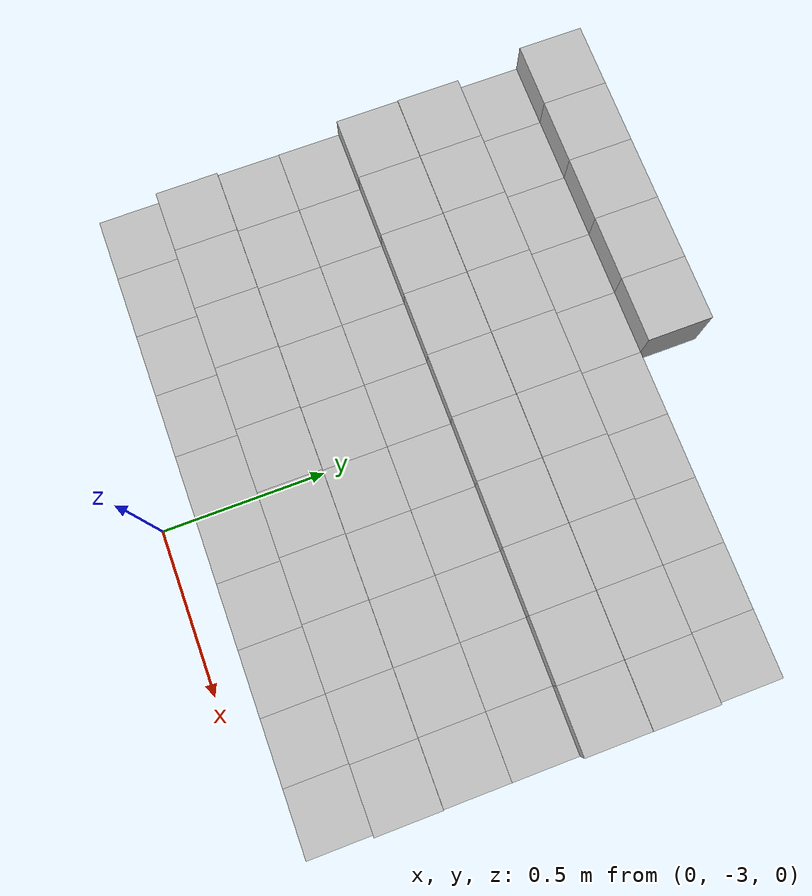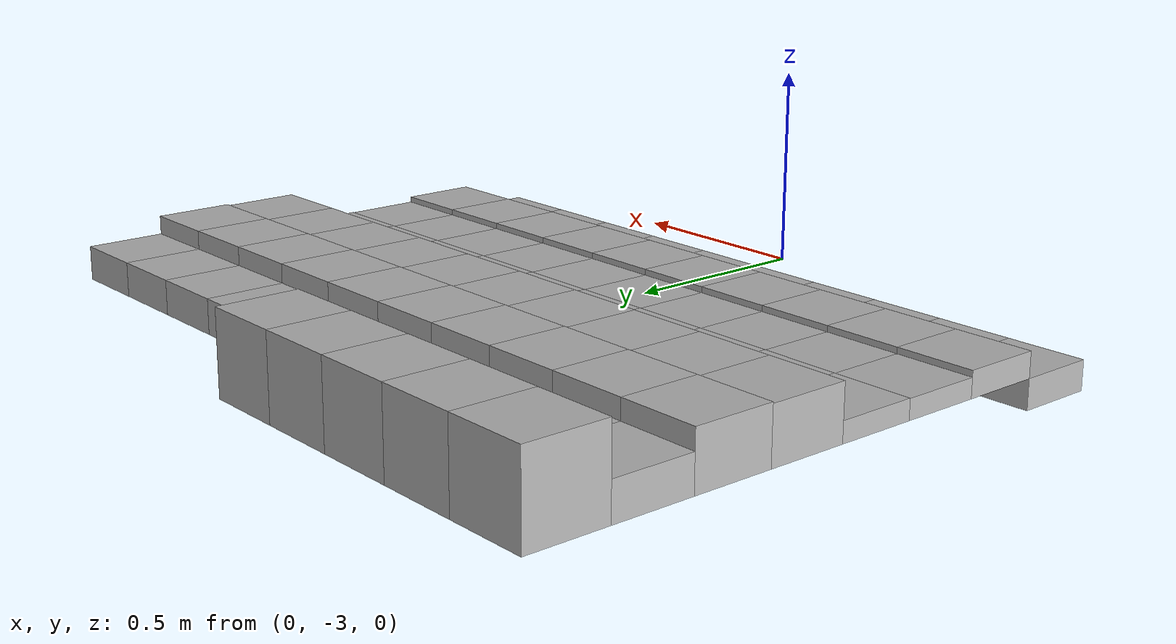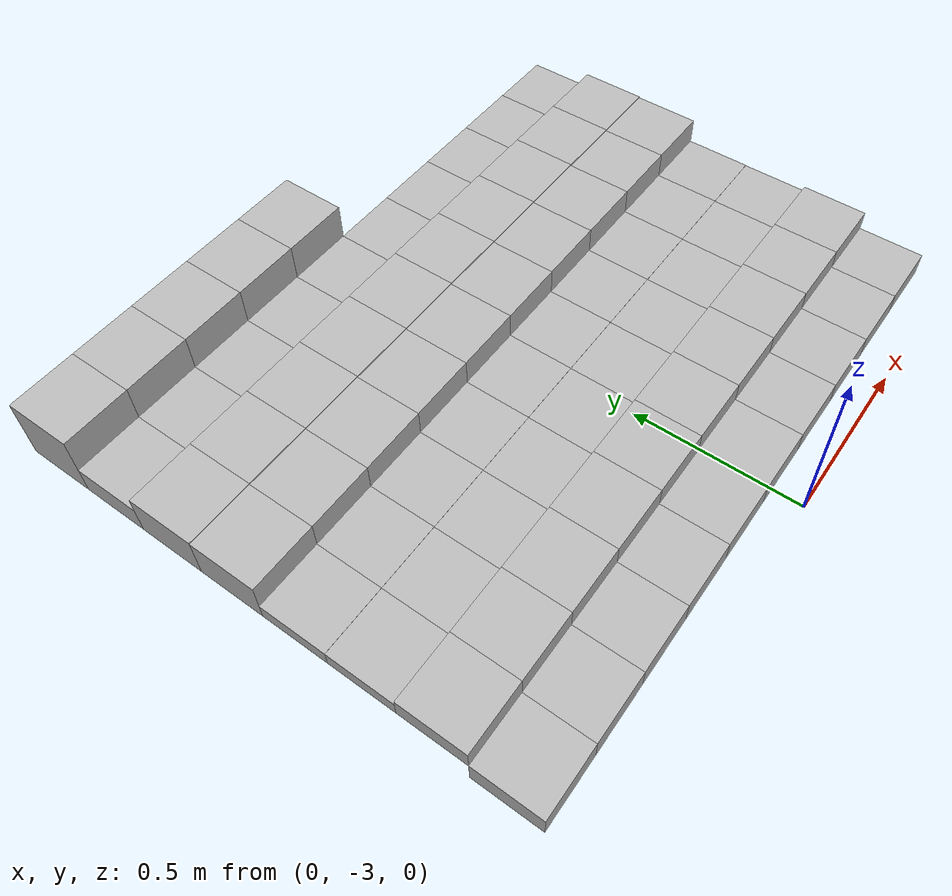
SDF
<sdf version="1.6">
 <model name="Terrain">
  <static>true</static>
  <link name="box_7_0">
   <pose>-0.9 -1.4 0.100415342453 0 0 0</pose>
   <inertial>
    <mass>1.0</mass>
    <inertia><ixx>0.0</ixx><ixy>0.0</ixy><ixz>0.0</ixz><iyy>0.0</iyy><iyz>0.0</iyz><izz>0.0</izz></inertia>
   </inertial>
   <collision name="collision"><geometry><box><size>0.2 0.2 0.200830684905</size></box></geometry></collision>
   <visual name="visual"><geometry><box><size>0.2 0.2 0.200830684905</size></box></geometry></visual>
  </link>
  <link name="box_7_1">
   <pose>-0.7 -1.4 0.100415342453 0 0 0</pose>
   <inertial>
    <mass>1.0</mass>
    <inertia><ixx>0.0</ixx><ixy>0.0</ixy><ixz>0.0</ixz><iyy>0.0</iyy><iyz>0.0</iyz><izz>0.0</izz></inertia>
   </inertial>
   <collision name="collision"><geometry><box><size>0.2 0.2 0.200830684905</size></box></geometry></collision>
   <visual name="visual"><geometry><box><size>0.2 0.2 0.200830684905</size></box></geometry></visual>
  </link>
  <link name="box_7_2">
   <pose>-0.5 -1.4 0.100415342453 0 0 0</pose>
   <inertial>
    <mass>1.0</mass>
    <inertia><ixx>0.0</ixx><ixy>0.0</ixy><ixz>0.0</ixz><iyy>0.0</iyy><iyz>0.0</iyz><izz>0.0</izz></inertia>
   </inertial>
   <collision name="collision"><geometry><box><size>0.2 0.2 0.200830684905</size></box></geometry></collision>
   <visual name="visual"><geometry><box><size>0.2 0.2 0.200830684905</size></box></geometry></visual>
  </link>
  <link name="box_7_3">
   <pose>-0.3 -1.4 0.100415342453 0 0 0</pose>
   <inertial>
    <mass>1.0</mass>
    <inertia><ixx>0.0</ixx><ixy>0.0</ixy><ixz>0.0</ixz><iyy>0.0</iyy><iyz>0.0</iyz><izz>0.0</izz></inertia>
   </inertial>
   <collision name="collision"><geometry><box><size>0.2 0.2 0.200830684905</size></box></geometry></collision>
   <visual name="visual"><geometry><box><size>0.2 0.2 0.200830684905</size></box></geometry></visual>
  </link>
  <link name="box_7_4">
   <pose>-0.1 -1.4 0.100415342453 0 0 0</pose>
   <inertial>
    <mass>1.0</mass>
    <inertia><ixx>0.0</ixx><ixy>0.0</ixy><ixz>0.0</ixz><iyy>0.0</iyy><iyz>0.0</iyz><izz>0.0</izz></inertia>
   </inertial>
   <collision name="collision"><geometry><box><size>0.2 0.2 0.200830684905</size></box></geometry></collision>
   <visual name="visual"><geometry><box><size>0.2 0.2 0.200830684905</size></box></geometry></visual>
  </link>
  <link name="box_8_0">
   <pose>-0.9 -1.6 0.0433111810572 0 0 0</pose>
   <inertial>
    <mass>1.0</mass>
    <inertia><ixx>0.0</ixx><ixy>0.0</ixy><ixz>0.0</ixz><iyy>0.0</iyy><iyz>0.0</iyz><izz>0.0</izz></inertia>
   </inertial>
   <collision name="collision"><geometry><box><size>0.2 0.2 0.0866223621144</size></box></geometry></collision>
   <visual name="visual"><geometry><box><size>0.2 0.2 0.0866223621144</size></box></geometry></visual>
  </link>
  <link name="box_8_1">
   <pose>-0.7 -1.6 0.0433111810572 0 0 0</pose>
   <inertial>
    <mass>1.0</mass>
    <inertia><ixx>0.0</ixx><ixy>0.0</ixy><ixz>0.0</ixz><iyy>0.0</iyy><iyz>0.0</iyz><izz>0.0</izz></inertia>
   </inertial>
   <collision name="collision"><geometry><box><size>0.2 0.2 0.0866223621144</size></box></geometry></collision>
   <visual name="visual"><geometry><box><size>0.2 0.2 0.0866223621144</size></box></geometry></visual>
  </link>
  <link name="box_8_2">
   <pose>-0.5 -1.6 0.0433111810572 0 0 0</pose>
   <inertial>
    <mass>1.0</mass>
    <inertia><ixx>0.0</ixx><ixy>0.0</ixy><ixz>0.0</ixz><iyy>0.0</iyy><iyz>0.0</iyz><izz>0.0</izz></inertia>
   </inertial>
   <collision name="collision"><geometry><box><size>0.2 0.2 0.0866223621144</size></box></geometry></collision>
   <visual name="visual"><geometry><box><size>0.2 0.2 0.0866223621144</size></box></geometry></visual>
  </link>
  <link name="box_8_3">
   <pose>-0.3 -1.6 0.0433111810572 0 0 0</pose>
   <inertial>
    <mass>1.0</mass>
    <inertia><ixx>0.0</ixx><ixy>0.0</ixy><ixz>0.0</ixz><iyy>0.0</iyy><iyz>0.0</iyz><izz>0.0</izz></inertia>
   </inertial>
   <collision name="collision"><geometry><box><size>0.2 0.2 0.0866223621144</size></box></geometry></collision>
   <visual name="visual"><geometry><box><size>0.2 0.2 0.0866223621144</size></box></geometry></visual>
  </link>
  <link name="box_8_4">
   <pose>-0.1 -1.6 0.0433111810572 0 0 0</pose>
   <inertial>
    <mass>1.0</mass>
    <inertia><ixx>0.0</ixx><ixy>0.0</ixy><ixz>0.0</ixz><iyy>0.0</iyy><iyz>0.0</iyz><izz>0.0</izz></inertia>
   </inertial>
   <collision name="collision"><geometry><box><size>0.2 0.2 0.0866223621144</size></box></geometry></collision>
   <visual name="visual"><geometry><box><size>0.2 0.2 0.0866223621144</size></box></geometry></visual>
  </link>
  <link name="box_8_5">
   <pose>0.1 -1.6 0.0433111810572 0 0 0</pose>
   <inertial>
    <mass>1.0</mass>
    <inertia><ixx>0.0</ixx><ixy>0.0</ixy><ixz>0.0</ixz><iyy>0.0</iyy><iyz>0.0</iyz><izz>0.0</izz></inertia>
   </inertial>
   <collision name="collision"><geometry><box><size>0.2 0.2 0.0866223621144</size></box></geometry></collision>
   <visual name="visual"><geometry><box><size>0.2 0.2 0.0866223621144</size></box></geometry></visual>
  </link>
  <link name="box_8_6">
   <pose>0.3 -1.6 0.0433111810572 0 0 0</pose>
   <inertial>
    <mass>1.0</mass>
    <inertia><ixx>0.0</ixx><ixy>0.0</ixy><ixz>0.0</ixz><iyy>0.0</iyy><iyz>0.0</iyz><izz>0.0</izz></inertia>
   </inertial>
   <collision name="collision"><geometry><box><size>0.2 0.2 0.0866223621144</size></box></geometry></collision>
   <visual name="visual"><geometry><box><size>0.2 0.2 0.0866223621144</size></box></geometry></visual>
  </link>
  <link name="box_8_7">
   <pose>0.5 -1.6 0.0433111810572 0 0 0</pose>
   <inertial>
    <mass>1.0</mass>
    <inertia><ixx>0.0</ixx><ixy>0.0</ixy><ixz>0.0</ixz><iyy>0.0</iyy><iyz>0.0</iyz><izz>0.0</izz></inertia>
   </inertial>
   <collision name="collision"><geometry><box><size>0.2 0.2 0.0866223621144</size></box></geometry></collision>
   <visual name="visual"><geometry><box><size>0.2 0.2 0.0866223621144</size></box></geometry></visual>
  </link>
  <link name="box_8_8">
   <pose>0.7 -1.6 0.0433111810572 0 0 0</pose>
   <inertial>
    <mass>1.0</mass>
    <inertia><ixx>0.0</ixx><ixy>0.0</ixy><ixz>0.0</ixz><iyy>0.0</iyy><iyz>0.0</iyz><izz>0.0</izz></inertia>
   </inertial>
   <collision name="collision"><geometry><box><size>0.2 0.2 0.0866223621144</size></box></geometry></collision>
   <visual name="visual"><geometry><box><size>0.2 0.2 0.0866223621144</size></box></geometry></visual>
  </link>
  <link name="box_8_9">
   <pose>0.9 -1.6 0.0433111810572 0 0 0</pose>
   <inertial>
    <mass>1.0</mass>
    <inertia><ixx>0.0</ixx><ixy>0.0</ixy><ixz>0.0</ixz><iyy>0.0</iyy><iyz>0.0</iyz><izz>0.0</izz></inertia>
   </inertial>
   <collision name="collision"><geometry><box><size>0.2 0.2 0.0866223621144</size></box></geometry></collision>
   <visual name="visual"><geometry><box><size>0.2 0.2 0.0866223621144</size></box></geometry></visual>
  </link>
  <link name="box_9_0">
   <pose>-0.9 -1.8 0.0672229291909 0 0 0</pose>
   <inertial>
    <mass>1.0</mass>
    <inertia><ixx>0.0</ixx><ixy>0.0</ixy><ixz>0.0</ixz><iyy>0.0</iyy><iyz>0.0</iyz><izz>0.0</izz></inertia>
   </inertial>
   <collision name="collision"><geometry><box><size>0.2 0.2 0.134445858382</size></box></geometry></collision>
   <visual name="visual"><geometry><box><size>0.2 0.2 0.134445858382</size></box></geometry></visual>
  </link>
  <link name="box_9_1">
   <pose>-0.7 -1.8 0.0672229291909 0 0 0</pose>
   <inertial>
    <mass>1.0</mass>
    <inertia><ixx>0.0</ixx><ixy>0.0</ixy><ixz>0.0</ixz><iyy>0.0</iyy><iyz>0.0</iyz><izz>0.0</izz></inertia>
   </inertial>
   <collision name="collision"><geometry><box><size>0.2 0.2 0.134445858382</size></box></geometry></collision>
   <visual name="visual"><geometry><box><size>0.2 0.2 0.134445858382</size></box></geometry></visual>
  </link>
  <link name="box_9_2">
   <pose>-0.5 -1.8 0.0672229291909 0 0 0</pose>
   <inertial>
    <mass>1.0</mass>
    <inertia><ixx>0.0</ixx><ixy>0.0</ixy><ixz>0.0</ixz><iyy>0.0</iyy><iyz>0.0</iyz><izz>0.0</izz></inertia>
   </inertial>
   <collision name="collision"><geometry><box><size>0.2 0.2 0.134445858382</size></box></geometry></collision>
   <visual name="visual"><geometry><box><size>0.2 0.2 0.134445858382</size></box></geometry></visual>
  </link>
  <link name="box_9_3">
   <pose>-0.3 -1.8 0.0672229291909 0 0 0</pose>
   <inertial>
    <mass>1.0</mass>
    <inertia><ixx>0.0</ixx><ixy>0.0</ixy><ixz>0.0</ixz><iyy>0.0</iyy><iyz>0.0</iyz><izz>0.0</izz></inertia>
   </inertial>
   <collision name="collision"><geometry><box><size>0.2 0.2 0.134445858382</size></box></geometry></collision>
   <visual name="visual"><geometry><box><size>0.2 0.2 0.134445858382</size></box></geometry></visual>
  </link>
  <link name="box_9_4">
   <pose>-0.1 -1.8 0.0672229291909 0 0 0</pose>
   <inertial>
    <mass>1.0</mass>
    <inertia><ixx>0.0</ixx><ixy>0.0</ixy><ixz>0.0</ixz><iyy>0.0</iyy><iyz>0.0</iyz><izz>0.0</izz></inertia>
   </inertial>
   <collision name="collision"><geometry><box><size>0.2 0.2 0.134445858382</size></box></geometry></collision>
   <visual name="visual"><geometry><box><size>0.2 0.2 0.134445858382</size></box></geometry></visual>
  </link>
  <link name="box_9_5">
   <pose>0.1 -1.8 0.0672229291909 0 0 0</pose>
   <inertial>
    <mass>1.0</mass>
    <inertia><ixx>0.0</ixx><ixy>0.0</ixy><ixz>0.0</ixz><iyy>0.0</iyy><iyz>0.0</iyz><izz>0.0</izz></inertia>
   </inertial>
   <collision name="collision"><geometry><box><size>0.2 0.2 0.134445858382</size></box></geometry></collision>
   <visual name="visual"><geometry><box><size>0.2 0.2 0.134445858382</size></box></geometry></visual>
  </link>
  <link name="box_9_6">
   <pose>0.3 -1.8 0.0672229291909 0 0 0</pose>
   <inertial>
    <mass>1.0</mass>
    <inertia><ixx>0.0</ixx><ixy>0.0</ixy><ixz>0.0</ixz><iyy>0.0</iyy><iyz>0.0</iyz><izz>0.0</izz></inertia>
   </inertial>
   <collision name="collision"><geometry><box><size>0.2 0.2 0.134445858382</size></box></geometry></collision>
   <visual name="visual"><geometry><box><size>0.2 0.2 0.134445858382</size></box></geometry></visual>
  </link>
  <link name="box_9_7">
   <pose>0.5 -1.8 0.0672229291909 0 0 0</pose>
   <inertial>
    <mass>1.0</mass>
    <inertia><ixx>0.0</ixx><ixy>0.0</ixy><ixz>0.0</ixz><iyy>0.0</iyy><iyz>0.0</iyz><izz>0.0</izz></inertia>
   </inertial>
   <collision name="collision"><geometry><box><size>0.2 0.2 0.134445858382</size></box></geometry></collision>
   <visual name="visual"><geometry><box><size>0.2 0.2 0.134445858382</size></box></geometry></visual>
  </link>
  <link name="box_9_8">
   <pose>0.7 -1.8 0.0672229291909 0 0 0</pose>
   <inertial>
    <mass>1.0</mass>
    <inertia><ixx>0.0</ixx><ixy>0.0</ixy><ixz>0.0</ixz><iyy>0.0</iyy><iyz>0.0</iyz><izz>0.0</izz></inertia>
   </inertial>
   <collision name="collision"><geometry><box><size>0.2 0.2 0.134445858382</size></box></geometry></collision>
   <visual name="visual"><geometry><box><size>0.2 0.2 0.134445858382</size></box></geometry></visual>
  </link>
  <link name="box_9_9">
   <pose>0.9 -1.8 0.0672229291909 0 0 0</pose>
   <inertial>
    <mass>1.0</mass>
    <inertia><ixx>0.0</ixx><ixy>0.0</ixy><ixz>0.0</ixz><iyy>0.0</iyy><iyz>0.0</iyz><izz>0.0</izz></inertia>
   </inertial>
   <collision name="collision"><geometry><box><size>0.2 0.2 0.134445858382</size></box></geometry></collision>
   <visual name="visual"><geometry><box><size>0.2 0.2 0.134445858382</size></box></geometry></visual>
  </link>
  <link name="box_10_0">
   <pose>-0.9 -2.0 0.0654775884848 0 0 0</pose>
   <inertial>
    <mass>1.0</mass>
    <inertia><ixx>0.0</ixx><ixy>0.0</ixy><ixz>0.0</ixz><iyy>0.0</iyy><iyz>0.0</iyz><izz>0.0</izz></inertia>
   </inertial>
   <collision name="collision"><geometry><box><size>0.2 0.2 0.13095517697</size></box></geometry></collision>
   <visual name="visual"><geometry><box><size>0.2 0.2 0.13095517697</size></box></geometry></visual>
  </link>
  <link name="box_10_1">
   <pose>-0.7 -2.0 0.0654775884848 0 0 0</pose>
   <inertial>
    <mass>1.0</mass>
    <inertia><ixx>0.0</ixx><ixy>0.0</ixy><ixz>0.0</ixz><iyy>0.0</iyy><iyz>0.0</iyz><izz>0.0</izz></inertia>
   </inertial>
   <collision name="collision"><geometry><box><size>0.2 0.2 0.13095517697</size></box></geometry></collision>
   <visual name="visual"><geometry><box><size>0.2 0.2 0.13095517697</size></box></geometry></visual>
  </link>
  <link name="box_10_2">
   <pose>-0.5 -2.0 0.0654775884848 0 0 0</pose>
   <inertial>
    <mass>1.0</mass>
    <inertia><ixx>0.0</ixx><ixy>0.0</ixy><ixz>0.0</ixz><iyy>0.0</iyy><iyz>0.0</iyz><izz>0.0</izz></inertia>
   </inertial>
   <collision name="collision"><geometry><box><size>0.2 0.2 0.13095517697</size></box></geometry></collision>
   <visual name="visual"><geometry><box><size>0.2 0.2 0.13095517697</size></box></geometry></visual>
  </link>
  <link name="box_10_3">
   <pose>-0.3 -2.0 0.0654775884848 0 0 0</pose>
   <inertial>
    <mass>1.0</mass>
    <inertia><ixx>0.0</ixx><ixy>0.0</ixy><ixz>0.0</ixz><iyy>0.0</iyy><iyz>0.0</iyz><izz>0.0</izz></inertia>
   </inertial>
   <collision name="collision"><geometry><box><size>0.2 0.2 0.13095517697</size></box></geometry></collision>
   <visual name="visual"><geometry><box><size>0.2 0.2 0.13095517697</size></box></geometry></visual>
  </link>
  <link name="box_10_4">
   <pose>-0.1 -2.0 0.0654775884848 0 0 0</pose>
   <inertial>
    <mass>1.0</mass>
    <inertia><ixx>0.0</ixx><ixy>0.0</ixy><ixz>0.0</ixz><iyy>0.0</iyy><iyz>0.0</iyz><izz>0.0</izz></inertia>
   </inertial>
   <collision name="collision"><geometry><box><size>0.2 0.2 0.13095517697</size></box></geometry></collision>
   <visual name="visual"><geometry><box><size>0.2 0.2 0.13095517697</size></box></geometry></visual>
  </link>
  <link name="box_10_5">
   <pose>0.1 -2.0 0.0654775884848 0 0 0</pose>
   <inertial>
    <mass>1.0</mass>
    <inertia><ixx>0.0</ixx><ixy>0.0</ixy><ixz>0.0</ixz><iyy>0.0</iyy><iyz>0.0</iyz><izz>0.0</izz></inertia>
   </inertial>
   <collision name="collision"><geometry><box><size>0.2 0.2 0.13095517697</size></box></geometry></collision>
   <visual name="visual"><geometry><box><size>0.2 0.2 0.13095517697</size></box></geometry></visual>
  </link>
  <link name="box_10_6">
   <pose>0.3 -2.0 0.0654775884848 0 0 0</pose>
   <inertial>
    <mass>1.0</mass>
    <inertia><ixx>0.0</ixx><ixy>0.0</ixy><ixz>0.0</ixz><iyy>0.0</iyy><iyz>0.0</iyz><izz>0.0</izz></inertia>
   </inertial>
   <collision name="collision"><geometry><box><size>0.2 0.2 0.13095517697</size></box></geometry></collision>
   <visual name="visual"><geometry><box><size>0.2 0.2 0.13095517697</size></box></geometry></visual>
  </link>
  <link name="box_10_7">
   <pose>0.5 -2.0 0.0654775884848 0 0 0</pose>
   <inertial>
    <mass>1.0</mass>
    <inertia><ixx>0.0</ixx><ixy>0.0</ixy><ixz>0.0</ixz><iyy>0.0</iyy><iyz>0.0</iyz><izz>0.0</izz></inertia>
   </inertial>
   <collision name="collision"><geometry><box><size>0.2 0.2 0.13095517697</size></box></geometry></collision>
   <visual name="visual"><geometry><box><size>0.2 0.2 0.13095517697</size></box></geometry></visual>
  </link>
  <link name="box_10_8">
   <pose>0.7 -2.0 0.0654775884848 0 0 0</pose>
   <inertial>
    <mass>1.0</mass>
    <inertia><ixx>0.0</ixx><ixy>0.0</ixy><ixz>0.0</ixz><iyy>0.0</iyy><iyz>0.0</iyz><izz>0.0</izz></inertia>
   </inertial>
   <collision name="collision"><geometry><box><size>0.2 0.2 0.13095517697</size></box></geometry></collision>
   <visual name="visual"><geometry><box><size>0.2 0.2 0.13095517697</size></box></geometry></visual>
  </link>
  <link name="box_10_9">
   <pose>0.9 -2.0 0.0654775884848 0 0 0</pose>
   <inertial>
    <mass>1.0</mass>
    <inertia><ixx>0.0</ixx><ixy>0.0</ixy><ixz>0.0</ixz><iyy>0.0</iyy><iyz>0.0</iyz><izz>0.0</izz></inertia>
   </inertial>
   <collision name="collision"><geometry><box><size>0.2 0.2 0.13095517697</size></box></geometry></collision>
   <visual name="visual"><geometry><box><size>0.2 0.2 0.13095517697</size></box></geometry></visual>
  </link>
  <link name="box_11_0">
   <pose>-0.9 -2.2 0.0244387623099 0 0 0</pose>
   <inertial>
    <mass>1.0</mass>
    <inertia><ixx>0.0</ixx><ixy>0.0</ixy><ixz>0.0</ixz><iyy>0.0</iyy><iyz>0.0</iyz><izz>0.0</izz></inertia>
   </inertial>
   <collision name="collision"><geometry><box><size>0.2 0.2 0.0488775246197</size></box></geometry></collision>
   <visual name="visual"><geometry><box><size>0.2 0.2 0.0488775246197</size></box></geometry></visual>
  </link>
  <link name="box_11_1">
   <pose>-0.7 -2.2 0.0244387623099 0 0 0</pose>
   <inertial>
    <mass>1.0</mass>
    <inertia><ixx>0.0</ixx><ixy>0.0</ixy><ixz>0.0</ixz><iyy>0.0</iyy><iyz>0.0</iyz><izz>0.0</izz></inertia>
   </inertial>
   <collision name="collision"><geometry><box><size>0.2 0.2 0.0488775246197</size></box></geometry></collision>
   <visual name="visual"><geometry><box><size>0.2 0.2 0.0488775246197</size></box></geometry></visual>
  </link>
  <link name="box_11_2">
   <pose>-0.5 -2.2 0.0244387623099 0 0 0</pose>
   <inertial>
    <mass>1.0</mass>
    <inertia><ixx>0.0</ixx><ixy>0.0</ixy><ixz>0.0</ixz><iyy>0.0</iyy><iyz>0.0</iyz><izz>0.0</izz></inertia>
   </inertial>
   <collision name="collision"><geometry><box><size>0.2 0.2 0.0488775246197</size></box></geometry></collision>
   <visual name="visual"><geometry><box><size>0.2 0.2 0.0488775246197</size></box></geometry></visual>
  </link>
  <link name="box_11_3">
   <pose>-0.3 -2.2 0.0244387623099 0 0 0</pose>
   <inertial>
    <mass>1.0</mass>
    <inertia><ixx>0.0</ixx><ixy>0.0</ixy><ixz>0.0</ixz><iyy>0.0</iyy><iyz>0.0</iyz><izz>0.0</izz></inertia>
   </inertial>
   <collision name="collision"><geometry><box><size>0.2 0.2 0.0488775246197</size></box></geometry></collision>
   <visual name="visual"><geometry><box><size>0.2 0.2 0.0488775246197</size></box></geometry></visual>
  </link>
  <link name="box_11_4">
   <pose>-0.1 -2.2 0.0244387623099 0 0 0</pose>
   <inertial>
    <mass>1.0</mass>
    <inertia><ixx>0.0</ixx><ixy>0.0</ixy><ixz>0.0</ixz><iyy>0.0</iyy><iyz>0.0</iyz><izz>0.0</izz></inertia>
   </inertial>
   <collision name="collision"><geometry><box><size>0.2 0.2 0.0488775246197</size></box></geometry></collision>
   <visual name="visual"><geometry><box><size>0.2 0.2 0.0488775246197</size></box></geometry></visual>
  </link>
  <link name="box_11_5">
   <pose>0.1 -2.2 0.0244387623099 0 0 0</pose>
   <inertial>
    <mass>1.0</mass>
    <inertia><ixx>0.0</ixx><ixy>0.0</ixy><ixz>0.0</ixz><iyy>0.0</iyy><iyz>0.0</iyz><izz>0.0</izz></inertia>
   </inertial>
   <collision name="collision"><geometry><box><size>0.2 0.2 0.0488775246197</size></box></geometry></collision>
   <visual name="visual"><geometry><box><size>0.2 0.2 0.0488775246197</size></box></geometry></visual>
  </link>
  <link name="box_11_6">
   <pose>0.3 -2.2 0.0244387623099 0 0 0</pose>
   <inertial>
    <mass>1.0</mass>
    <inertia><ixx>0.0</ixx><ixy>0.0</ixy><ixz>0.0</ixz><iyy>0.0</iyy><iyz>0.0</iyz><izz>0.0</izz></inertia>
   </inertial>
   <collision name="collision"><geometry><box><size>0.2 0.2 0.0488775246197</size></box></geometry></collision>
   <visual name="visual"><geometry><box><size>0.2 0.2 0.0488775246197</size></box></geometry></visual>
  </link>
  <link name="box_11_7">
   <pose>0.5 -2.2 0.0244387623099 0 0 0</pose>
   <inertial>
    <mass>1.0</mass>
    <inertia><ixx>0.0</ixx><ixy>0.0</ixy><ixz>0.0</ixz><iyy>0.0</iyy><iyz>0.0</iyz><izz>0.0</izz></inertia>
   </inertial>
   <collision name="collision"><geometry><box><size>0.2 0.2 0.0488775246197</size></box></geometry></collision>
   <visual name="visual"><geometry><box><size>0.2 0.2 0.0488775246197</size></box></geometry></visual>
  </link>
  <link name="box_11_8">
   <pose>0.7 -2.2 0.0244387623099 0 0 0</pose>
   <inertial>
    <mass>1.0</mass>
    <inertia><ixx>0.0</ixx><ixy>0.0</ixy><ixz>0.0</ixz><iyy>0.0</iyy><iyz>0.0</iyz><izz>0.0</izz></inertia>
   </inertial>
   <collision name="collision"><geometry><box><size>0.2 0.2 0.0488775246197</size></box></geometry></collision>
   <visual name="visual"><geometry><box><size>0.2 0.2 0.0488775246197</size></box></geometry></visual>
  </link>
  <link name="box_11_9">
   <pose>0.9 -2.2 0.0244387623099 0 0 0</pose>
   <inertial>
    <mass>1.0</mass>
    <inertia><ixx>0.0</ixx><ixy>0.0</ixy><ixz>0.0</ixz><iyy>0.0</iyy><iyz>0.0</iyz><izz>0.0</izz></inertia>
   </inertial>
   <collision name="collision"><geometry><box><size>0.2 0.2 0.0488775246197</size></box></geometry></collision>
   <visual name="visual"><geometry><box><size>0.2 0.2 0.0488775246197</size></box></geometry></visual>
  </link>
  <link name="box_12_0">
   <pose>-0.9 -2.4 0.0239796906936 0 0 0</pose>
   <inertial>
    <mass>1.0</mass>
    <inertia><ixx>0.0</ixx><ixy>0.0</ixy><ixz>0.0</ixz><iyy>0.0</iyy><iyz>0.0</iyz><izz>0.0</izz></inertia>
   </inertial>
   <collision name="collision"><geometry><box><size>0.2 0.2 0.0479593813872</size></box></geometry></collision>
   <visual name="visual"><geometry><box><size>0.2 0.2 0.0479593813872</size></box></geometry></visual>
  </link>
  <link name="box_12_1">
   <pose>-0.7 -2.4 0.0239796906936 0 0 0</pose>
   <inertial>
    <mass>1.0</mass>
    <inertia><ixx>0.0</ixx><ixy>0.0</ixy><ixz>0.0</ixz><iyy>0.0</iyy><iyz>0.0</iyz><izz>0.0</izz></inertia>
   </inertial>
   <collision name="collision"><geometry><box><size>0.2 0.2 0.0479593813872</size></box></geometry></collision>
   <visual name="visual"><geometry><box><size>0.2 0.2 0.0479593813872</size></box></geometry></visual>
  </link>
  <link name="box_12_2">
   <pose>-0.5 -2.4 0.0239796906936 0 0 0</pose>
   <inertial>
    <mass>1.0</mass>
    <inertia><ixx>0.0</ixx><ixy>0.0</ixy><ixz>0.0</ixz><iyy>0.0</iyy><iyz>0.0</iyz><izz>0.0</izz></inertia>
   </inertial>
   <collision name="collision"><geometry><box><size>0.2 0.2 0.0479593813872</size></box></geometry></collision>
   <visual name="visual"><geometry><box><size>0.2 0.2 0.0479593813872</size></box></geometry></visual>
  </link>
  <link name="box_12_3">
   <pose>-0.3 -2.4 0.0239796906936 0 0 0</pose>
   <inertial>
    <mass>1.0</mass>
    <inertia><ixx>0.0</ixx><ixy>0.0</ixy><ixz>0.0</ixz><iyy>0.0</iyy><iyz>0.0</iyz><izz>0.0</izz></inertia>
   </inertial>
   <collision name="collision"><geometry><box><size>0.2 0.2 0.0479593813872</size></box></geometry></collision>
   <visual name="visual"><geometry><box><size>0.2 0.2 0.0479593813872</size></box></geometry></visual>
  </link>
  <link name="box_12_4">
   <pose>-0.1 -2.4 0.0239796906936 0 0 0</pose>
   <inertial>
    <mass>1.0</mass>
    <inertia><ixx>0.0</ixx><ixy>0.0</ixy><ixz>0.0</ixz><iyy>0.0</iyy><iyz>0.0</iyz><izz>0.0</izz></inertia>
   </inertial>
   <collision name="collision"><geometry><box><size>0.2 0.2 0.0479593813872</size></box></geometry></collision>
   <visual name="visual"><geometry><box><size>0.2 0.2 0.0479593813872</size></box></geometry></visual>
  </link>
  <link name="box_12_5">
   <pose>0.1 -2.4 0.0239796906936 0 0 0</pose>
   <inertial>
    <mass>1.0</mass>
    <inertia><ixx>0.0</ixx><ixy>0.0</ixy><ixz>0.0</ixz><iyy>0.0</iyy><iyz>0.0</iyz><izz>0.0</izz></inertia>
   </inertial>
   <collision name="collision"><geometry><box><size>0.2 0.2 0.0479593813872</size></box></geometry></collision>
   <visual name="visual"><geometry><box><size>0.2 0.2 0.0479593813872</size></box></geometry></visual>
  </link>
  <link name="box_12_6">
   <pose>0.3 -2.4 0.0239796906936 0 0 0</pose>
   <inertial>
    <mass>1.0</mass>
    <inertia><ixx>0.0</ixx><ixy>0.0</ixy><ixz>0.0</ixz><iyy>0.0</iyy><iyz>0.0</iyz><izz>0.0</izz></inertia>
   </inertial>
   <collision name="collision"><geometry><box><size>0.2 0.2 0.0479593813872</size></box></geometry></collision>
   <visual name="visual"><geometry><box><size>0.2 0.2 0.0479593813872</size></box></geometry></visual>
  </link>
  <link name="box_12_7">
   <pose>0.5 -2.4 0.0239796906936 0 0 0</pose>
   <inertial>
    <mass>1.0</mass>
    <inertia><ixx>0.0</ixx><ixy>0.0</ixy><ixz>0.0</ixz><iyy>0.0</iyy><iyz>0.0</iyz><izz>0.0</izz></inertia>
   </inertial>
   <collision name="collision"><geometry><box><size>0.2 0.2 0.0479593813872</size></box></geometry></collision>
   <visual name="visual"><geometry><box><size>0.2 0.2 0.0479593813872</size></box></geometry></visual>
  </link>
  <link name="box_12_8">
   <pose>0.7 -2.4 0.0239796906936 0 0 0</pose>
   <inertial>
    <mass>1.0</mass>
    <inertia><ixx>0.0</ixx><ixy>0.0</ixy><ixz>0.0</ixz><iyy>0.0</iyy><iyz>0.0</iyz><izz>0.0</izz></inertia>
   </inertial>
   <collision name="collision"><geometry><box><size>0.2 0.2 0.0479593813872</size></box></geometry></collision>
   <visual name="visual"><geometry><box><size>0.2 0.2 0.0479593813872</size></box></geometry></visual>
  </link>
  <link name="box_12_9">
   <pose>0.9 -2.4 0.0239796906936 0 0 0</pose>
   <inertial>
    <mass>1.0</mass>
    <inertia><ixx>0.0</ixx><ixy>0.0</ixy><ixz>0.0</ixz><iyy>0.0</iyy><iyz>0.0</iyz><izz>0.0</izz></inertia>
   </inertial>
   <collision name="collision"><geometry><box><size>0.2 0.2 0.0479593813872</size></box></geometry></collision>
   <visual name="visual"><geometry><box><size>0.2 0.2 0.0479593813872</size></box></geometry></visual>
  </link>
  <link name="box_13_0">
   <pose>-0.9 -2.6 0.0315662176197 0 0 0</pose>
   <inertial>
    <mass>1.0</mass>
    <inertia><ixx>0.0</ixx><ixy>0.0</ixy><ixz>0.0</ixz><iyy>0.0</iyy><iyz>0.0</iyz><izz>0.0</izz></inertia>
   </inertial>
   <collision name="collision"><geometry><box><size>0.2 0.2 0.0631324352393</size></box></geometry></collision>
   <visual name="visual"><geometry><box><size>0.2 0.2 0.0631324352393</size></box></geometry></visual>
  </link>
  <link name="box_13_1">
   <pose>-0.7 -2.6 0.0315662176197 0 0 0</pose>
   <inertial>
    <mass>1.0</mass>
    <inertia><ixx>0.0</ixx><ixy>0.0</ixy><ixz>0.0</ixz><iyy>0.0</iyy><iyz>0.0</iyz><izz>0.0</izz></inertia>
   </inertial>
   <collision name="collision"><geometry><box><size>0.2 0.2 0.0631324352393</size></box></geometry></collision>
   <visual name="visual"><geometry><box><size>0.2 0.2 0.0631324352393</size></box></geometry></visual>
  </link>
  <link name="box_13_2">
   <pose>-0.5 -2.6 0.0315662176197 0 0 0</pose>
   <inertial>
    <mass>1.0</mass>
    <inertia><ixx>0.0</ixx><ixy>0.0</ixy><ixz>0.0</ixz><iyy>0.0</iyy><iyz>0.0</iyz><izz>0.0</izz></inertia>
   </inertial>
   <collision name="collision"><geometry><box><size>0.2 0.2 0.0631324352393</size></box></geometry></collision>
   <visual name="visual"><geometry><box><size>0.2 0.2 0.0631324352393</size></box></geometry></visual>
  </link>
  <link name="box_13_3">
   <pose>-0.3 -2.6 0.0315662176197 0 0 0</pose>
   <inertial>
    <mass>1.0</mass>
    <inertia><ixx>0.0</ixx><ixy>0.0</ixy><ixz>0.0</ixz><iyy>0.0</iyy><iyz>0.0</iyz><izz>0.0</izz></inertia>
   </inertial>
   <collision name="collision"><geometry><box><size>0.2 0.2 0.0631324352393</size></box></geometry></collision>
   <visual name="visual"><geometry><box><size>0.2 0.2 0.0631324352393</size></box></geometry></visual>
  </link>
  <link name="box_13_4">
   <pose>-0.1 -2.6 0.0315662176197 0 0 0</pose>
   <inertial>
    <mass>1.0</mass>
    <inertia><ixx>0.0</ixx><ixy>0.0</ixy><ixz>0.0</ixz><iyy>0.0</iyy><iyz>0.0</iyz><izz>0.0</izz></inertia>
   </inertial>
   <collision name="collision"><geometry><box><size>0.2 0.2 0.0631324352393</size></box></geometry></collision>
   <visual name="visual"><geometry><box><size>0.2 0.2 0.0631324352393</size></box></geometry></visual>
  </link>
  <link name="box_13_5">
   <pose>0.1 -2.6 0.0315662176197 0 0 0</pose>
   <inertial>
    <mass>1.0</mass>
    <inertia><ixx>0.0</ixx><ixy>0.0</ixy><ixz>0.0</ixz><iyy>0.0</iyy><iyz>0.0</iyz><izz>0.0</izz></inertia>
   </inertial>
   <collision name="collision"><geometry><box><size>0.2 0.2 0.0631324352393</size></box></geometry></collision>
   <visual name="visual"><geometry><box><size>0.2 0.2 0.0631324352393</size></box></geometry></visual>
  </link>
  <link name="box_13_6">
   <pose>0.3 -2.6 0.0315662176197 0 0 0</pose>
   <inertial>
    <mass>1.0</mass>
    <inertia><ixx>0.0</ixx><ixy>0.0</ixy><ixz>0.0</ixz><iyy>0.0</iyy><iyz>0.0</iyz><izz>0.0</izz></inertia>
   </inertial>
   <collision name="collision"><geometry><box><size>0.2 0.2 0.0631324352393</size></box></geometry></collision>
   <visual name="visual"><geometry><box><size>0.2 0.2 0.0631324352393</size></box></geometry></visual>
  </link>
  <link name="box_13_7">
   <pose>0.5 -2.6 0.0315662176197 0 0 0</pose>
   <inertial>
    <mass>1.0</mass>
    <inertia><ixx>0.0</ixx><ixy>0.0</ixy><ixz>0.0</ixz><iyy>0.0</iyy><iyz>0.0</iyz><izz>0.0</izz></inertia>
   </inertial>
   <collision name="collision"><geometry><box><size>0.2 0.2 0.0631324352393</size></box></geometry></collision>
   <visual name="visual"><geometry><box><size>0.2 0.2 0.0631324352393</size></box></geometry></visual>
  </link>
  <link name="box_13_8">
   <pose>0.7 -2.6 0.0315662176197 0 0 0</pose>
   <inertial>
    <mass>1.0</mass>
    <inertia><ixx>0.0</ixx><ixy>0.0</ixy><ixz>0.0</ixz><iyy>0.0</iyy><iyz>0.0</iyz><izz>0.0</izz></inertia>
   </inertial>
   <collision name="collision"><geometry><box><size>0.2 0.2 0.0631324352393</size></box></geometry></collision>
   <visual name="visual"><geometry><box><size>0.2 0.2 0.0631324352393</size></box></geometry></visual>
  </link>
  <link name="box_13_9">
   <pose>0.9 -2.6 0.0315662176197 0 0 0</pose>
   <inertial>
    <mass>1.0</mass>
    <inertia><ixx>0.0</ixx><ixy>0.0</ixy><ixz>0.0</ixz><iyy>0.0</iyy><iyz>0.0</iyz><izz>0.0</izz></inertia>
   </inertial>
   <collision name="collision"><geometry><box><size>0.2 0.2 0.0631324352393</size></box></geometry></collision>
   <visual name="visual"><geometry><box><size>0.2 0.2 0.0631324352393</size></box></geometry></visual>
  </link>
  <link name="box_14_0">
   <pose>-0.9 -2.8 -0.0367006924948 0 0 0</pose>
   <inertial>
    <mass>1.0</mass>
    <inertia><ixx>0.0</ixx><ixy>0.0</ixy><ixz>0.0</ixz><iyy>0.0</iyy><iyz>0.0</iyz><izz>0.0</izz></inertia>
   </inertial>
   <collision name="collision"><geometry><box><size>0.2 0.2 -0.0734013849897</size></box></geometry></collision>
   <visual name="visual"><geometry><box><size>0.2 0.2 -0.0734013849897</size></box></geometry></visual>
  </link>
  <link name="box_14_1">
   <pose>-0.7 -2.8 -0.0367006924948 0 0 0</pose>
   <inertial>
    <mass>1.0</mass>
    <inertia><ixx>0.0</ixx><ixy>0.0</ixy><ixz>0.0</ixz><iyy>0.0</iyy><iyz>0.0</iyz><izz>0.0</izz></inertia>
   </inertial>
   <collision name="collision"><geometry><box><size>0.2 0.2 -0.0734013849897</size></box></geometry></collision>
   <visual name="visual"><geometry><box><size>0.2 0.2 -0.0734013849897</size></box></geometry></visual>
  </link>
  <link name="box_14_2">
   <pose>-0.5 -2.8 -0.0367006924948 0 0 0</pose>
   <inertial>
    <mass>1.0</mass>
    <inertia><ixx>0.0</ixx><ixy>0.0</ixy><ixz>0.0</ixz><iyy>0.0</iyy><iyz>0.0</iyz><izz>0.0</izz></inertia>
   </inertial>
   <collision name="collision"><geometry><box><size>0.2 0.2 -0.0734013849897</size></box></geometry></collision>
   <visual name="visual"><geometry><box><size>0.2 0.2 -0.0734013849897</size></box></geometry></visual>
  </link>
  <link name="box_14_3">
   <pose>-0.3 -2.8 -0.0367006924948 0 0 0</pose>
   <inertial>
    <mass>1.0</mass>
    <inertia><ixx>0.0</ixx><ixy>0.0</ixy><ixz>0.0</ixz><iyy>0.0</iyy><iyz>0.0</iyz><izz>0.0</izz></inertia>
   </inertial>
   <collision name="collision"><geometry><box><size>0.2 0.2 -0.0734013849897</size></box></geometry></collision>
   <visual name="visual"><geometry><box><size>0.2 0.2 -0.0734013849897</size></box></geometry></visual>
  </link>
  <link name="box_14_4">
   <pose>-0.1 -2.8 -0.0367006924948 0 0 0</pose>
   <inertial>
    <mass>1.0</mass>
    <inertia><ixx>0.0</ixx><ixy>0.0</ixy><ixz>0.0</ixz><iyy>0.0</iyy><iyz>0.0</iyz><izz>0.0</izz></inertia>
   </inertial>
   <collision name="collision"><geometry><box><size>0.2 0.2 -0.0734013849897</size></box></geometry></collision>
   <visual name="visual"><geometry><box><size>0.2 0.2 -0.0734013849897</size></box></geometry></visual>
  </link>
  <link name="box_14_5">
   <pose>0.1 -2.8 -0.0367006924948 0 0 0</pose>
   <inertial>
    <mass>1.0</mass>
    <inertia><ixx>0.0</ixx><ixy>0.0</ixy><ixz>0.0</ixz><iyy>0.0</iyy><iyz>0.0</iyz><izz>0.0</izz></inertia>
   </inertial>
   <collision name="collision"><geometry><box><size>0.2 0.2 -0.0734013849897</size></box></geometry></collision>
   <visual name="visual"><geometry><box><size>0.2 0.2 -0.0734013849897</size></box></geometry></visual>
  </link>
  <link name="box_14_6">
   <pose>0.3 -2.8 -0.0367006924948 0 0 0</pose>
   <inertial>
    <mass>1.0</mass>
    <inertia><ixx>0.0</ixx><ixy>0.0</ixy><ixz>0.0</ixz><iyy>0.0</iyy><iyz>0.0</iyz><izz>0.0</izz></inertia>
   </inertial>
   <collision name="collision"><geometry><box><size>0.2 0.2 -0.0734013849897</size></box></geometry></collision>
   <visual name="visual"><geometry><box><size>0.2 0.2 -0.0734013849897</size></box></geometry></visual>
  </link>
  <link name="box_14_7">
   <pose>0.5 -2.8 -0.0367006924948 0 0 0</pose>
   <inertial>
    <mass>1.0</mass>
    <inertia><ixx>0.0</ixx><ixy>0.0</ixy><ixz>0.0</ixz><iyy>0.0</iyy><iyz>0.0</iyz><izz>0.0</izz></inertia>
   </inertial>
   <collision name="collision"><geometry><box><size>0.2 0.2 -0.0734013849897</size></box></geometry></collision>
   <visual name="visual"><geometry><box><size>0.2 0.2 -0.0734013849897</size></box></geometry></visual>
  </link>
  <link name="box_14_8">
   <pose>0.7 -2.8 -0.0367006924948 0 0 0</pose>
   <inertial>
    <mass>1.0</mass>
    <inertia><ixx>0.0</ixx><ixy>0.0</ixy><ixz>0.0</ixz><iyy>0.0</iyy><iyz>0.0</iyz><izz>0.0</izz></inertia>
   </inertial>
   <collision name="collision"><geometry><box><size>0.2 0.2 -0.0734013849897</size></box></geometry></collision>
   <visual name="visual"><geometry><box><size>0.2 0.2 -0.0734013849897</size></box></geometry></visual>
  </link>
  <link name="box_14_9">
   <pose>0.9 -2.8 -0.0367006924948 0 0 0</pose>
   <inertial>
    <mass>1.0</mass>
    <inertia><ixx>0.0</ixx><ixy>0.0</ixy><ixz>0.0</ixz><iyy>0.0</iyy><iyz>0.0</iyz><izz>0.0</izz></inertia>
   </inertial>
   <collision name="collision"><geometry><box><size>0.2 0.2 -0.0734013849897</size></box></geometry></collision>
   <visual name="visual"><geometry><box><size>0.2 0.2 -0.0734013849897</size></box></geometry></visual>
  </link>
 </model>
</sdf>
